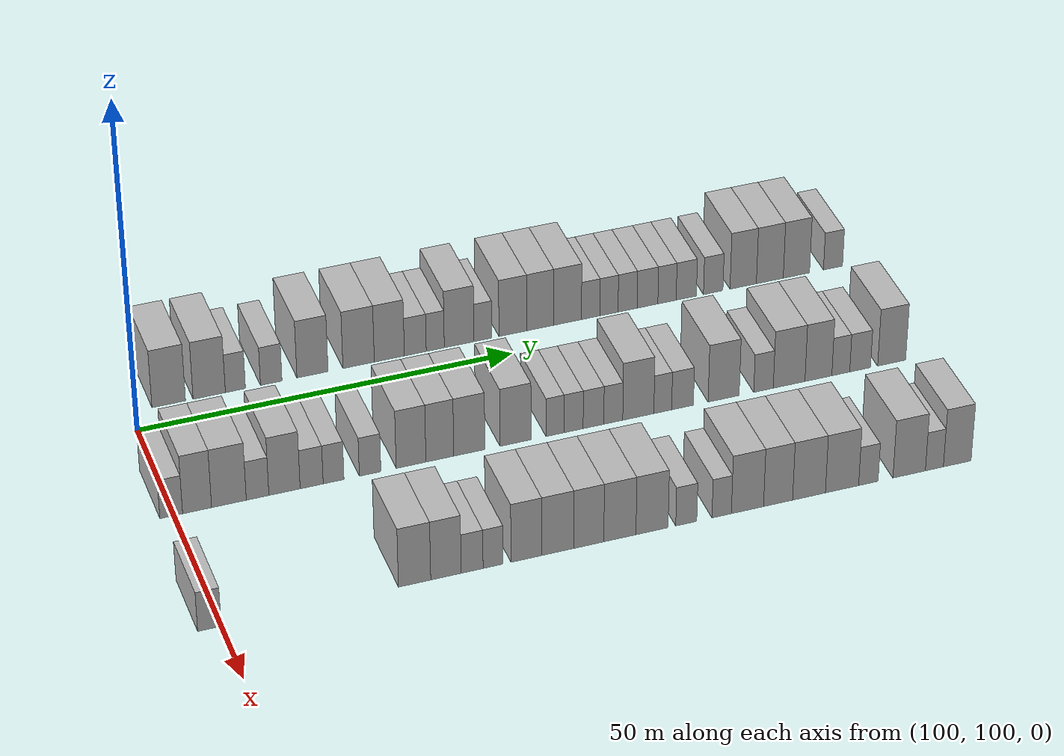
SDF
<sdf version="1.6">
 <world name="default">
  <model name="building_689">
   <static>1</static>
   <pose>91.0000 105.1484 0 0.000000 0.000000 0.000000</pose>
   <link name="link">
    <pose>0 0 4.50 0 0 0</pose>
    <collision name="collision"><geometry><box><size>10.0000 4.4140 9.0000</size></box></geometry></collision>
    <visual name="visual">
     <cast_shadows>0</cast_shadows>
     <geometry><box><size>10.0000 4.4140 9.0000</size></box></geometry>
     <material>
      <script>
       <uri>model://HANNAS_wall/materials/scripts</uri>
       <uri>model://HANNAS_wall/materials/textures</uri>
       <name>vrc/HANNAS_wall</name>
      </script>
     </material>
    </visual>
   </link>
  </model>
  <model name="building_690">
   <static>1</static>
   <pose>91.0000 110.4901 0 0.000000 0.000000 0.000000</pose>
   <link name="link">
    <pose>0 0 4.50 0 0 0</pose>
    <collision name="collision"><geometry><box><size>10.0000 4.2694 9.0000</size></box></geometry></collision>
    <visual name="visual">
     <cast_shadows>0</cast_shadows>
     <geometry><box><size>10.0000 4.2694 9.0000</size></box></geometry>
     <material>
      <script>
       <uri>model://HANNAS_wall/materials/scripts</uri>
       <uri>model://HANNAS_wall/materials/textures</uri>
       <name>vrc/HANNAS_wall</name>
      </script>
     </material>
    </visual>
   </link>
  </model>
  <model name="building_691">
   <static>1</static>
   <pose>91.0000 113.9552 0 0.000000 0.000000 0.000000</pose>
   <link name="link">
    <pose>0 0 3.00 0 0 0</pose>
    <collision name="collision"><geometry><box><size>10.0000 2.6608 6.0000</size></box></geometry></collision>
    <visual name="visual">
     <cast_shadows>0</cast_shadows>
     <geometry><box><size>10.0000 2.6608 6.0000</size></box></geometry>
     <material>
      <script>
       <uri>model://HANNAS_wall/materials/scripts</uri>
       <uri>model://HANNAS_wall/materials/textures</uri>
       <name>vrc/HANNAS_wall</name>
      </script>
     </material>
    </visual>
   </link>
  </model>
  <model name="building_692">
   <static>1</static>
   <pose>91.0000 118.7201 0 0.000000 0.000000 0.000000</pose>
   <link name="link">
    <pose>0 0 3.00 0 0 0</pose>
    <collision name="collision"><geometry><box><size>10.0000 2.8691 6.0000</size></box></geometry></collision>
    <visual name="visual">
     <cast_shadows>0</cast_shadows>
     <geometry><box><size>10.0000 2.8691 6.0000</size></box></geometry>
     <material>
      <script>
       <uri>model://HANNAS_wall/materials/scripts</uri>
       <uri>model://HANNAS_wall/materials/textures</uri>
       <name>vrc/HANNAS_wall</name>
      </script>
     </material>
    </visual>
   </link>
  </model>
  <model name="building_693">
   <static>1</static>
   <pose>91.0000 124.2416 0 0.000000 0.000000 0.000000</pose>
   <link name="link">
    <pose>0 0 4.50 0 0 0</pose>
    <collision name="collision"><geometry><box><size>10.0000 4.1738 9.0000</size></box></geometry></collision>
    <visual name="visual">
     <cast_shadows>0</cast_shadows>
     <geometry><box><size>10.0000 4.1738 9.0000</size></box></geometry>
     <material>
      <script>
       <uri>model://HANNAS_wall/materials/scripts</uri>
       <uri>model://HANNAS_wall/materials/textures</uri>
       <name>vrc/HANNAS_wall</name>
      </script>
     </material>
    </visual>
   </link>
  </model>
  <model name="building_694">
   <static>1</static>
   <pose>91.0000 130.4463 0 0.000000 0.000000 0.000000</pose>
   <link name="link">
    <pose>0 0 4.50 0 0 0</pose>
    <collision name="collision"><geometry><box><size>10.0000 4.2356 9.0000</size></box></geometry></collision>
    <visual name="visual">
     <cast_shadows>0</cast_shadows>
     <geometry><box><size>10.0000 4.2356 9.0000</size></box></geometry>
     <material>
      <script>
       <uri>model://HANNAS_wall/materials/scripts</uri>
       <uri>model://HANNAS_wall/materials/textures</uri>
       <name>vrc/HANNAS_wall</name>
      </script>
     </material>
    </visual>
   </link>
  </model>
  <model name="building_695">
   <static>1</static>
   <pose>91.0000 134.6014 0 0.000000 0.000000 0.000000</pose>
   <link name="link">
    <pose>0 0 4.50 0 0 0</pose>
    <collision name="collision"><geometry><box><size>10.0000 4.0746 9.0000</size></box></geometry></collision>
    <visual name="visual">
     <cast_shadows>0</cast_shadows>
     <geometry><box><size>10.0000 4.0746 9.0000</size></box></geometry>
     <material>
      <script>
       <uri>model://HANNAS_wall/materials/scripts</uri>
       <uri>model://HANNAS_wall/materials/textures</uri>
       <name>vrc/HANNAS_wall</name>
      </script>
     </material>
    </visual>
   </link>
  </model>
  <model name="building_696">
   <static>1</static>
   <pose>91.0000 138.1238 0 0.000000 0.000000 0.000000</pose>
   <link name="link">
    <pose>0 0 3.00 0 0 0</pose>
    <collision name="collision"><geometry><box><size>10.0000 2.9702 6.0000</size></box></geometry></collision>
    <visual name="visual">
     <cast_shadows>0</cast_shadows>
     <geometry><box><size>10.0000 2.9702 6.0000</size></box></geometry>
     <material>
      <script>
       <uri>model://HANNAS_wall/materials/scripts</uri>
       <uri>model://HANNAS_wall/materials/textures</uri>
       <name>vrc/HANNAS_wall</name>
      </script>
     </material>
    </visual>
   </link>
  </model>
  <model name="building_697">
   <static>1</static>
   <pose>91.0000 140.8395 0 0.000000 0.000000 0.000000</pose>
   <link name="link">
    <pose>0 0 3.00 0 0 0</pose>
    <collision name="collision"><geometry><box><size>10.0000 2.4612 6.0000</size></box></geometry></collision>
    <visual name="visual">
     <cast_shadows>0</cast_shadows>
     <geometry><box><size>10.0000 2.4612 6.0000</size></box></geometry>
     <material>
      <script>
       <uri>model://HANNAS_wall/materials/scripts</uri>
       <uri>model://HANNAS_wall/materials/textures</uri>
       <name>vrc/HANNAS_wall</name>
      </script>
     </material>
    </visual>
   </link>
  </model>
  <model name="building_698">
   <static>1</static>
   <pose>91.0000 144.1012 0 0.000000 0.000000 0.000000</pose>
   <link name="link">
    <pose>0 0 4.50 0 0 0</pose>
    <collision name="collision"><geometry><box><size>10.0000 4.0623 9.0000</size></box></geometry></collision>
    <visual name="visual">
     <cast_shadows>0</cast_shadows>
     <geometry><box><size>10.0000 4.0623 9.0000</size></box></geometry>
     <material>
      <script>
       <uri>model://HANNAS_wall/materials/scripts</uri>
       <uri>model://HANNAS_wall/materials/textures</uri>
       <name>vrc/HANNAS_wall</name>
      </script>
     </material>
    </visual>
   </link>
  </model>
  <model name="building_699">
   <static>1</static>
   <pose>91.0000 147.3451 0 0.000000 0.000000 0.000000</pose>
   <link name="link">
    <pose>0 0 3.00 0 0 0</pose>
    <collision name="collision"><geometry><box><size>10.0000 2.4255 6.0000</size></box></geometry></collision>
    <visual name="visual">
     <cast_shadows>0</cast_shadows>
     <geometry><box><size>10.0000 2.4255 6.0000</size></box></geometry>
     <material>
      <script>
       <uri>model://HANNAS_wall/materials/scripts</uri>
       <uri>model://HANNAS_wall/materials/textures</uri>
       <name>vrc/HANNAS_wall</name>
      </script>
     </material>
    </visual>
   </link>
  </model>
  <model name="building_700">
   <static>1</static>
   <pose>91.0000 151.4682 0 0.000000 0.000000 0.000000</pose>
   <link name="link">
    <pose>0 0 4.50 0 0 0</pose>
    <collision name="collision"><geometry><box><size>10.0000 3.8207 9.0000</size></box></geometry></collision>
    <visual name="visual">
     <cast_shadows>0</cast_shadows>
     <geometry><box><size>10.0000 3.8207 9.0000</size></box></geometry>
     <material>
      <script>
       <uri>model://HANNAS_wall/materials/scripts</uri>
       <uri>model://HANNAS_wall/materials/textures</uri>
       <name>vrc/HANNAS_wall</name>
      </script>
     </material>
    </visual>
   </link>
  </model>
  <model name="building_701">
   <static>1</static>
   <pose>91.0000 155.2470 0 0.000000 0.000000 0.000000</pose>
   <link name="link">
    <pose>0 0 4.50 0 0 0</pose>
    <collision name="collision"><geometry><box><size>10.0000 3.7368 9.0000</size></box></geometry></collision>
    <visual name="visual">
     <cast_shadows>0</cast_shadows>
     <geometry><box><size>10.0000 3.7368 9.0000</size></box></geometry>
     <material>
      <script>
       <uri>model://HANNAS_wall/materials/scripts</uri>
       <uri>model://HANNAS_wall/materials/textures</uri>
       <name>vrc/HANNAS_wall</name>
      </script>
     </material>
    </visual>
   </link>
  </model>
  <model name="building_702">
   <static>1</static>
   <pose>91.0000 159.0429 0 0.000000 0.000000 0.000000</pose>
   <link name="link">
    <pose>0 0 4.50 0 0 0</pose>
    <collision name="collision"><geometry><box><size>10.0000 3.8551 9.0000</size></box></geometry></collision>
    <visual name="visual">
     <cast_shadows>0</cast_shadows>
     <geometry><box><size>10.0000 3.8551 9.0000</size></box></geometry>
     <material>
      <script>
       <uri>model://HANNAS_wall/materials/scripts</uri>
       <uri>model://HANNAS_wall/materials/textures</uri>
       <name>vrc/HANNAS_wall</name>
      </script>
     </material>
    </visual>
   </link>
  </model>
  <model name="building_703">
   <static>1</static>
   <pose>91.0000 162.2574 0 0.000000 0.000000 0.000000</pose>
   <link name="link">
    <pose>0 0 3.00 0 0 0</pose>
    <collision name="collision"><geometry><box><size>10.0000 2.5739 6.0000</size></box></geometry></collision>
    <visual name="visual">
     <cast_shadows>0</cast_shadows>
     <geometry><box><size>10.0000 2.5739 6.0000</size></box></geometry>
     <material>
      <script>
       <uri>model://HANNAS_wall/materials/scripts</uri>
       <uri>model://HANNAS_wall/materials/textures</uri>
       <name>vrc/HANNAS_wall</name>
      </script>
     </material>
    </visual>
   </link>
  </model>
  <model name="building_704">
   <static>1</static>
   <pose>91.0000 164.8081 0 0.000000 0.000000 0.000000</pose>
   <link name="link">
    <pose>0 0 3.00 0 0 0</pose>
    <collision name="collision"><geometry><box><size>10.0000 2.5275 6.0000</size></box></geometry></collision>
    <visual name="visual">
     <cast_shadows>0</cast_shadows>
     <geometry><box><size>10.0000 2.5275 6.0000</size></box></geometry>
     <material>
      <script>
       <uri>model://HANNAS_wall/materials/scripts</uri>
       <uri>model://HANNAS_wall/materials/textures</uri>
       <name>vrc/HANNAS_wall</name>
      </script>
     </material>
    </visual>
   </link>
  </model>
  <model name="building_705">
   <static>1</static>
   <pose>91.0000 167.4057 0 0.000000 0.000000 0.000000</pose>
   <link name="link">
    <pose>0 0 3.00 0 0 0</pose>
    <collision name="collision"><geometry><box><size>10.0000 2.6676 6.0000</size></box></geometry></collision>
    <visual name="visual">
     <cast_shadows>0</cast_shadows>
     <geometry><box><size>10.0000 2.6676 6.0000</size></box></geometry>
     <material>
      <script>
       <uri>model://HANNAS_wall/materials/scripts</uri>
       <uri>model://HANNAS_wall/materials/textures</uri>
       <name>vrc/HANNAS_wall</name>
      </script>
     </material>
    </visual>
   </link>
  </model>
  <model name="building_706">
   <static>1</static>
   <pose>91.0000 170.1947 0 0.000000 0.000000 0.000000</pose>
   <link name="link">
    <pose>0 0 3.00 0 0 0</pose>
    <collision name="collision"><geometry><box><size>10.0000 2.9104 6.0000</size></box></geometry></collision>
    <visual name="visual">
     <cast_shadows>0</cast_shadows>
     <geometry><box><size>10.0000 2.9104 6.0000</size></box></geometry>
     <material>
      <script>
       <uri>model://HANNAS_wall/materials/scripts</uri>
       <uri>model://HANNAS_wall/materials/textures</uri>
       <name>vrc/HANNAS_wall</name>
      </script>
     </material>
    </visual>
   </link>
  </model>
  <model name="building_707">
   <static>1</static>
   <pose>91.0000 172.9384 0 0.000000 0.000000 0.000000</pose>
   <link name="link">
    <pose>0 0 3.00 0 0 0</pose>
    <collision name="collision"><geometry><box><size>10.0000 2.5768 6.0000</size></box></geometry></collision>
    <visual name="visual">
     <cast_shadows>0</cast_shadows>
     <geometry><box><size>10.0000 2.5768 6.0000</size></box></geometry>
     <material>
      <script>
       <uri>model://HANNAS_wall/materials/scripts</uri>
       <uri>model://HANNAS_wall/materials/textures</uri>
       <name>vrc/HANNAS_wall</name>
      </script>
     </material>
    </visual>
   </link>
  </model>
  <model name="building_708">
   <static>1</static>
   <pose>91.0000 175.6549 0 0.000000 0.000000 0.000000</pose>
   <link name="link">
    <pose>0 0 3.00 0 0 0</pose>
    <collision name="collision"><geometry><box><size>10.0000 2.8563 6.0000</size></box></geometry></collision>
    <visual name="visual">
     <cast_shadows>0</cast_shadows>
     <geometry><box><size>10.0000 2.8563 6.0000</size></box></geometry>
     <material>
      <script>
       <uri>model://HANNAS_wall/materials/scripts</uri>
       <uri>model://HANNAS_wall/materials/textures</uri>
       <name>vrc/HANNAS_wall</name>
      </script>
     </material>
    </visual>
   </link>
  </model>
  <model name="building_709">
   <static>1</static>
   <pose>91.0000 179.4628 0 0.000000 0.000000 0.000000</pose>
   <link name="link">
    <pose>0 0 3.00 0 0 0</pose>
    <collision name="collision"><geometry><box><size>10.0000 2.7596 6.0000</size></box></geometry></collision>
    <visual name="visual">
     <cast_shadows>0</cast_shadows>
     <geometry><box><size>10.0000 2.7596 6.0000</size></box></geometry>
     <material>
      <script>
       <uri>model://HANNAS_wall/materials/scripts</uri>
       <uri>model://HANNAS_wall/materials/textures</uri>
       <name>vrc/HANNAS_wall</name>
      </script>
     </material>
    </visual>
   </link>
  </model>
  <model name="building_710">
   <static>1</static>
   <pose>91.0000 183.7193 0 0.000000 0.000000 0.000000</pose>
   <link name="link">
    <pose>0 0 4.50 0 0 0</pose>
    <collision name="collision"><geometry><box><size>10.0000 3.7533 9.0000</size></box></geometry></collision>
    <visual name="visual">
     <cast_shadows>0</cast_shadows>
     <geometry><box><size>10.0000 3.7533 9.0000</size></box></geometry>
     <material>
      <script>
       <uri>model://HANNAS_wall/materials/scripts</uri>
       <uri>model://HANNAS_wall/materials/textures</uri>
       <name>vrc/HANNAS_wall</name>
      </script>
     </material>
    </visual>
   </link>
  </model>
  <model name="building_711">
   <static>1</static>
   <pose>91.0000 187.5154 0 0.000000 0.000000 0.000000</pose>
   <link name="link">
    <pose>0 0 4.50 0 0 0</pose>
    <collision name="collision"><geometry><box><size>10.0000 3.8388 9.0000</size></box></geometry></collision>
    <visual name="visual">
     <cast_shadows>0</cast_shadows>
     <geometry><box><size>10.0000 3.8388 9.0000</size></box></geometry>
     <material>
      <script>
       <uri>model://HANNAS_wall/materials/scripts</uri>
       <uri>model://HANNAS_wall/materials/textures</uri>
       <name>vrc/HANNAS_wall</name>
      </script>
     </material>
    </visual>
   </link>
  </model>
  <model name="building_712">
   <static>1</static>
   <pose>91.0000 191.3182 0 0.000000 0.000000 0.000000</pose>
   <link name="link">
    <pose>0 0 4.50 0 0 0</pose>
    <collision name="collision"><geometry><box><size>10.0000 3.7668 9.0000</size></box></geometry></collision>
    <visual name="visual">
     <cast_shadows>0</cast_shadows>
     <geometry><box><size>10.0000 3.7668 9.0000</size></box></geometry>
     <material>
      <script>
       <uri>model://HANNAS_wall/materials/scripts</uri>
       <uri>model://HANNAS_wall/materials/textures</uri>
       <name>vrc/HANNAS_wall</name>
      </script>
     </material>
    </visual>
   </link>
  </model>
  <model name="building_713">
   <static>1</static>
   <pose>91.0000 196.5730 0 0.000000 0.000000 0.000000</pose>
   <link name="link">
    <pose>0 0 3.00 0 0 0</pose>
    <collision name="collision"><geometry><box><size>10.0000 2.7430 6.0000</size></box></geometry></collision>
    <visual name="visual">
     <cast_shadows>0</cast_shadows>
     <geometry><box><size>10.0000 2.7430 6.0000</size></box></geometry>
     <material>
      <script>
       <uri>model://HANNAS_wall/materials/scripts</uri>
       <uri>model://HANNAS_wall/materials/textures</uri>
       <name>vrc/HANNAS_wall</name>
      </script>
     </material>
    </visual>
   </link>
  </model>
  <model name="building_870">
   <static>1</static>
   <pose>113.0000 99.6848 0 0.000000 0.000000 0.000000</pose>
   <link name="link">
    <pose>0 0 3.00 0 0 0</pose>
    <collision name="collision"><geometry><box><size>10.0000 2.8811 6.0000</size></box></geometry></collision>
    <visual name="visual">
     <cast_shadows>0</cast_shadows>
     <geometry><box><size>10.0000 2.8811 6.0000</size></box></geometry>
     <material>
      <script>
       <uri>model://HANNAS_wall/materials/scripts</uri>
       <uri>model://HANNAS_wall/materials/textures</uri>
       <name>vrc/HANNAS_wall</name>
      </script>
     </material>
    </visual>
   </link>
  </model>
  <model name="building_871">
   <static>1</static>
   <pose>113.0000 102.9719 0 0.000000 0.000000 0.000000</pose>
   <link name="link">
    <pose>0 0 4.50 0 0 0</pose>
    <collision name="collision"><geometry><box><size>10.0000 3.6931 9.0000</size></box></geometry></collision>
    <visual name="visual">
     <cast_shadows>0</cast_shadows>
     <geometry><box><size>10.0000 3.6931 9.0000</size></box></geometry>
     <material>
      <script>
       <uri>model://HANNAS_wall/materials/scripts</uri>
       <uri>model://HANNAS_wall/materials/textures</uri>
       <name>vrc/HANNAS_wall</name>
      </script>
     </material>
    </visual>
   </link>
  </model>
  <model name="building_872">
   <static>1</static>
   <pose>113.0000 107.0374 0 0.000000 0.000000 0.000000</pose>
   <link name="link">
    <pose>0 0 4.50 0 0 0</pose>
    <collision name="collision"><geometry><box><size>10.0000 4.4379 9.0000</size></box></geometry></collision>
    <visual name="visual">
     <cast_shadows>0</cast_shadows>
     <geometry><box><size>10.0000 4.4379 9.0000</size></box></geometry>
     <material>
      <script>
       <uri>model://HANNAS_wall/materials/scripts</uri>
       <uri>model://HANNAS_wall/materials/textures</uri>
       <name>vrc/HANNAS_wall</name>
      </script>
     </material>
    </visual>
   </link>
  </model>
  <model name="building_873">
   <static>1</static>
   <pose>113.0000 110.7042 0 0.000000 0.000000 0.000000</pose>
   <link name="link">
    <pose>0 0 3.00 0 0 0</pose>
    <collision name="collision"><geometry><box><size>10.0000 2.8957 6.0000</size></box></geometry></collision>
    <visual name="visual">
     <cast_shadows>0</cast_shadows>
     <geometry><box><size>10.0000 2.8957 6.0000</size></box></geometry>
     <material>
      <script>
       <uri>model://HANNAS_wall/materials/scripts</uri>
       <uri>model://HANNAS_wall/materials/textures</uri>
       <name>vrc/HANNAS_wall</name>
      </script>
     </material>
    </visual>
   </link>
  </model>
  <model name="building_874">
   <static>1</static>
   <pose>113.0000 114.1680 0 0.000000 0.000000 0.000000</pose>
   <link name="link">
    <pose>0 0 4.50 0 0 0</pose>
    <collision name="collision"><geometry><box><size>10.0000 4.0319 9.0000</size></box></geometry></collision>
    <visual name="visual">
     <cast_shadows>0</cast_shadows>
     <geometry><box><size>10.0000 4.0319 9.0000</size></box></geometry>
     <material>
      <script>
       <uri>model://HANNAS_wall/materials/scripts</uri>
       <uri>model://HANNAS_wall/materials/textures</uri>
       <name>vrc/HANNAS_wall</name>
      </script>
     </material>
    </visual>
   </link>
  </model>
  <model name="building_875">
   <static>1</static>
   <pose>113.0000 117.6734 0 0.000000 0.000000 0.000000</pose>
   <link name="link">
    <pose>0 0 3.00 0 0 0</pose>
    <collision name="collision"><geometry><box><size>10.0000 2.9788 6.0000</size></box></geometry></collision>
    <visual name="visual">
     <cast_shadows>0</cast_shadows>
     <geometry><box><size>10.0000 2.9788 6.0000</size></box></geometry>
     <material>
      <script>
       <uri>model://HANNAS_wall/materials/scripts</uri>
       <uri>model://HANNAS_wall/materials/textures</uri>
       <name>vrc/HANNAS_wall</name>
      </script>
     </material>
    </visual>
   </link>
  </model>
  <model name="building_876">
   <static>1</static>
   <pose>113.0000 120.5105 0 0.000000 0.000000 0.000000</pose>
   <link name="link">
    <pose>0 0 3.00 0 0 0</pose>
    <collision name="collision"><geometry><box><size>10.0000 2.6953 6.0000</size></box></geometry></collision>
    <visual name="visual">
     <cast_shadows>0</cast_shadows>
     <geometry><box><size>10.0000 2.6953 6.0000</size></box></geometry>
     <material>
      <script>
       <uri>model://HANNAS_wall/materials/scripts</uri>
       <uri>model://HANNAS_wall/materials/textures</uri>
       <name>vrc/HANNAS_wall</name>
      </script>
     </material>
    </visual>
   </link>
  </model>
  <model name="building_877">
   <static>1</static>
   <pose>113.0000 125.2604 0 0.000000 0.000000 0.000000</pose>
   <link name="link">
    <pose>0 0 3.00 0 0 0</pose>
    <collision name="collision"><geometry><box><size>10.0000 2.8044 6.0000</size></box></geometry></collision>
    <visual name="visual">
     <cast_shadows>0</cast_shadows>
     <geometry><box><size>10.0000 2.8044 6.0000</size></box></geometry>
     <material>
      <script>
       <uri>model://HANNAS_wall/materials/scripts</uri>
       <uri>model://HANNAS_wall/materials/textures</uri>
       <name>vrc/HANNAS_wall</name>
      </script>
     </material>
    </visual>
   </link>
  </model>
  <model name="building_878">
   <static>1</static>
   <pose>113.0000 130.6135 0 0.000000 0.000000 0.000000</pose>
   <link name="link">
    <pose>0 0 4.50 0 0 0</pose>
    <collision name="collision"><geometry><box><size>10.0000 3.9019 9.0000</size></box></geometry></collision>
    <visual name="visual">
     <cast_shadows>0</cast_shadows>
     <geometry><box><size>10.0000 3.9019 9.0000</size></box></geometry>
     <material>
      <script>
       <uri>model://HANNAS_wall/materials/scripts</uri>
       <uri>model://HANNAS_wall/materials/textures</uri>
       <name>vrc/HANNAS_wall</name>
      </script>
     </material>
    </visual>
   </link>
  </model>
  <model name="building_879">
   <static>1</static>
   <pose>113.0000 134.3978 0 0.000000 0.000000 0.000000</pose>
   <link name="link">
    <pose>0 0 4.50 0 0 0</pose>
    <collision name="collision"><geometry><box><size>10.0000 3.6666 9.0000</size></box></geometry></collision>
    <visual name="visual">
     <cast_shadows>0</cast_shadows>
     <geometry><box><size>10.0000 3.6666 9.0000</size></box></geometry>
     <material>
      <script>
       <uri>model://HANNAS_wall/materials/scripts</uri>
       <uri>model://HANNAS_wall/materials/textures</uri>
       <name>vrc/HANNAS_wall</name>
      </script>
     </material>
    </visual>
   </link>
  </model>
  <model name="building_880">
   <static>1</static>
   <pose>113.0000 138.2841 0 0.000000 0.000000 0.000000</pose>
   <link name="link">
    <pose>0 0 4.50 0 0 0</pose>
    <collision name="collision"><geometry><box><size>10.0000 4.1061 9.0000</size></box></geometry></collision>
    <visual name="visual">
     <cast_shadows>0</cast_shadows>
     <geometry><box><size>10.0000 4.1061 9.0000</size></box></geometry>
     <material>
      <script>
       <uri>model://HANNAS_wall/materials/scripts</uri>
       <uri>model://HANNAS_wall/materials/textures</uri>
       <name>vrc/HANNAS_wall</name>
      </script>
     </material>
    </visual>
   </link>
  </model>
  <model name="building_881">
   <static>1</static>
   <pose>113.0000 144.3983 0 0.000000 0.000000 0.000000</pose>
   <link name="link">
    <pose>0 0 4.50 0 0 0</pose>
    <collision name="collision"><geometry><box><size>10.0000 4.1223 9.0000</size></box></geometry></collision>
    <visual name="visual">
     <cast_shadows>0</cast_shadows>
     <geometry><box><size>10.0000 4.1223 9.0000</size></box></geometry>
     <material>
      <script>
       <uri>model://HANNAS_wall/materials/scripts</uri>
       <uri>model://HANNAS_wall/materials/textures</uri>
       <name>vrc/HANNAS_wall</name>
      </script>
     </material>
    </visual>
   </link>
  </model>
  <model name="building_882">
   <static>1</static>
   <pose>113.0000 149.6615 0 0.000000 0.000000 0.000000</pose>
   <link name="link">
    <pose>0 0 3.00 0 0 0</pose>
    <collision name="collision"><geometry><box><size>10.0000 2.4042 6.0000</size></box></geometry></collision>
    <visual name="visual">
     <cast_shadows>0</cast_shadows>
     <geometry><box><size>10.0000 2.4042 6.0000</size></box></geometry>
     <material>
      <script>
       <uri>model://HANNAS_wall/materials/scripts</uri>
       <uri>model://HANNAS_wall/materials/textures</uri>
       <name>vrc/HANNAS_wall</name>
      </script>
     </material>
    </visual>
   </link>
  </model>
  <model name="building_883">
   <static>1</static>
   <pose>113.0000 152.1461 0 0.000000 0.000000 0.000000</pose>
   <link name="link">
    <pose>0 0 3.00 0 0 0</pose>
    <collision name="collision"><geometry><box><size>10.0000 2.5650 6.0000</size></box></geometry></collision>
    <visual name="visual">
     <cast_shadows>0</cast_shadows>
     <geometry><box><size>10.0000 2.5650 6.0000</size></box></geometry>
     <material>
      <script>
       <uri>model://HANNAS_wall/materials/scripts</uri>
       <uri>model://HANNAS_wall/materials/textures</uri>
       <name>vrc/HANNAS_wall</name>
      </script>
     </material>
    </visual>
   </link>
  </model>
  <model name="building_884">
   <static>1</static>
   <pose>113.0000 154.8182 0 0.000000 0.000000 0.000000</pose>
   <link name="link">
    <pose>0 0 3.00 0 0 0</pose>
    <collision name="collision"><geometry><box><size>10.0000 2.7792 6.0000</size></box></geometry></collision>
    <visual name="visual">
     <cast_shadows>0</cast_shadows>
     <geometry><box><size>10.0000 2.7792 6.0000</size></box></geometry>
     <material>
      <script>
       <uri>model://HANNAS_wall/materials/scripts</uri>
       <uri>model://HANNAS_wall/materials/textures</uri>
       <name>vrc/HANNAS_wall</name>
      </script>
     </material>
    </visual>
   </link>
  </model>
  <model name="building_885">
   <static>1</static>
   <pose>113.0000 157.4840 0 0.000000 0.000000 0.000000</pose>
   <link name="link">
    <pose>0 0 3.00 0 0 0</pose>
    <collision name="collision"><geometry><box><size>10.0000 2.5523 6.0000</size></box></geometry></collision>
    <visual name="visual">
     <cast_shadows>0</cast_shadows>
     <geometry><box><size>10.0000 2.5523 6.0000</size></box></geometry>
     <material>
      <script>
       <uri>model://HANNAS_wall/materials/scripts</uri>
       <uri>model://HANNAS_wall/materials/textures</uri>
       <name>vrc/HANNAS_wall</name>
      </script>
     </material>
    </visual>
   </link>
  </model>
  <model name="building_886">
   <static>1</static>
   <pose>113.0000 160.8616 0 0.000000 0.000000 0.000000</pose>
   <link name="link">
    <pose>0 0 4.50 0 0 0</pose>
    <collision name="collision"><geometry><box><size>10.0000 4.2029 9.0000</size></box></geometry></collision>
    <visual name="visual">
     <cast_shadows>0</cast_shadows>
     <geometry><box><size>10.0000 4.2029 9.0000</size></box></geometry>
     <material>
      <script>
       <uri>model://HANNAS_wall/materials/scripts</uri>
       <uri>model://HANNAS_wall/materials/textures</uri>
       <name>vrc/HANNAS_wall</name>
      </script>
     </material>
    </visual>
   </link>
  </model>
  <model name="building_887">
   <static>1</static>
   <pose>113.0000 164.1713 0 0.000000 0.000000 0.000000</pose>
   <link name="link">
    <pose>0 0 3.00 0 0 0</pose>
    <collision name="collision"><geometry><box><size>10.0000 2.4165 6.0000</size></box></geometry></collision>
    <visual name="visual">
     <cast_shadows>0</cast_shadows>
     <geometry><box><size>10.0000 2.4165 6.0000</size></box></geometry>
     <material>
      <script>
       <uri>model://HANNAS_wall/materials/scripts</uri>
       <uri>model://HANNAS_wall/materials/textures</uri>
       <name>vrc/HANNAS_wall</name>
      </script>
     </material>
    </visual>
   </link>
  </model>
  <model name="building_888">
   <static>1</static>
   <pose>113.0000 166.8611 0 0.000000 0.000000 0.000000</pose>
   <link name="link">
    <pose>0 0 3.00 0 0 0</pose>
    <collision name="collision"><geometry><box><size>10.0000 2.9630 6.0000</size></box></geometry></collision>
    <visual name="visual">
     <cast_shadows>0</cast_shadows>
     <geometry><box><size>10.0000 2.9630 6.0000</size></box></geometry>
     <material>
      <script>
       <uri>model://HANNAS_wall/materials/scripts</uri>
       <uri>model://HANNAS_wall/materials/textures</uri>
       <name>vrc/HANNAS_wall</name>
      </script>
     </material>
    </visual>
   </link>
  </model>
  <model name="building_889">
   <static>1</static>
   <pose>113.0000 172.4681 0 0.000000 0.000000 0.000000</pose>
   <link name="link">
    <pose>0 0 4.50 0 0 0</pose>
    <collision name="collision"><geometry><box><size>10.0000 4.2511 9.0000</size></box></geometry></collision>
    <visual name="visual">
     <cast_shadows>0</cast_shadows>
     <geometry><box><size>10.0000 4.2511 9.0000</size></box></geometry>
     <material>
      <script>
       <uri>model://HANNAS_wall/materials/scripts</uri>
       <uri>model://HANNAS_wall/materials/textures</uri>
       <name>vrc/HANNAS_wall</name>
      </script>
     </material>
    </visual>
   </link>
  </model>
  <model name="building_890">
   <static>1</static>
   <pose>113.0000 177.9372 0 0.000000 0.000000 0.000000</pose>
   <link name="link">
    <pose>0 0 3.00 0 0 0</pose>
    <collision name="collision"><geometry><box><size>10.0000 2.6871 6.0000</size></box></geometry></collision>
    <visual name="visual">
     <cast_shadows>0</cast_shadows>
     <geometry><box><size>10.0000 2.6871 6.0000</size></box></geometry>
     <material>
      <script>
       <uri>model://HANNAS_wall/materials/scripts</uri>
       <uri>model://HANNAS_wall/materials/textures</uri>
       <name>vrc/HANNAS_wall</name>
      </script>
     </material>
    </visual>
   </link>
  </model>
  <model name="building_891">
   <static>1</static>
   <pose>113.0000 181.4681 0 0.000000 0.000000 0.000000</pose>
   <link name="link">
    <pose>0 0 4.50 0 0 0</pose>
    <collision name="collision"><geometry><box><size>10.0000 4.3747 9.0000</size></box></geometry></collision>
    <visual name="visual">
     <cast_shadows>0</cast_shadows>
     <geometry><box><size>10.0000 4.3747 9.0000</size></box></geometry>
     <material>
      <script>
       <uri>model://HANNAS_wall/materials/scripts</uri>
       <uri>model://HANNAS_wall/materials/textures</uri>
       <name>vrc/HANNAS_wall</name>
      </script>
     </material>
    </visual>
   </link>
  </model>
  <model name="building_892">
   <static>1</static>
   <pose>113.0000 185.5213 0 0.000000 0.000000 0.000000</pose>
   <link name="link">
    <pose>0 0 4.50 0 0 0</pose>
    <collision name="collision"><geometry><box><size>10.0000 3.7317 9.0000</size></box></geometry></collision>
    <visual name="visual">
     <cast_shadows>0</cast_shadows>
     <geometry><box><size>10.0000 3.7317 9.0000</size></box></geometry>
     <material>
      <script>
       <uri>model://HANNAS_wall/materials/scripts</uri>
       <uri>model://HANNAS_wall/materials/textures</uri>
       <name>vrc/HANNAS_wall</name>
      </script>
     </material>
    </visual>
   </link>
  </model>
  <model name="building_893">
   <static>1</static>
   <pose>113.0000 188.6314 0 0.000000 0.000000 0.000000</pose>
   <link name="link">
    <pose>0 0 3.00 0 0 0</pose>
    <collision name="collision"><geometry><box><size>10.0000 2.4883 6.0000</size></box></geometry></collision>
    <visual name="visual">
     <cast_shadows>0</cast_shadows>
     <geometry><box><size>10.0000 2.4883 6.0000</size></box></geometry>
     <material>
      <script>
       <uri>model://HANNAS_wall/materials/scripts</uri>
       <uri>model://HANNAS_wall/materials/textures</uri>
       <name>vrc/HANNAS_wall</name>
      </script>
     </material>
    </visual>
   </link>
  </model>
  <model name="building_894">
   <static>1</static>
   <pose>113.0000 191.3251 0 0.000000 0.000000 0.000000</pose>
   <link name="link">
    <pose>0 0 3.00 0 0 0</pose>
    <collision name="collision"><geometry><box><size>10.0000 2.8992 6.0000</size></box></geometry></collision>
    <visual name="visual">
     <cast_shadows>0</cast_shadows>
     <geometry><box><size>10.0000 2.8992 6.0000</size></box></geometry>
     <material>
      <script>
       <uri>model://HANNAS_wall/materials/scripts</uri>
       <uri>model://HANNAS_wall/materials/textures</uri>
       <name>vrc/HANNAS_wall</name>
      </script>
     </material>
    </visual>
   </link>
  </model>
  <model name="building_895">
   <static>1</static>
   <pose>113.0000 195.7334 0 0.000000 0.000000 0.000000</pose>
   <link name="link">
    <pose>0 0 4.50 0 0 0</pose>
    <collision name="collision"><geometry><box><size>10.0000 3.9172 9.0000</size></box></geometry></collision>
    <visual name="visual">
     <cast_shadows>0</cast_shadows>
     <geometry><box><size>10.0000 3.9172 9.0000</size></box></geometry>
     <material>
      <script>
       <uri>model://HANNAS_wall/materials/scripts</uri>
       <uri>model://HANNAS_wall/materials/textures</uri>
       <name>vrc/HANNAS_wall</name>
      </script>
     </material>
    </visual>
   </link>
  </model>
  <model name="building_1066">
   <static>1</static>
   <pose>135.0000 98.5664 0 0.000000 0.000000 0.000000</pose>
   <link name="link">
    <pose>0 0 3.00 0 0 0</pose>
    <collision name="collision"><geometry><box><size>10.0000 2.8975 6.0000</size></box></geometry></collision>
    <visual name="visual">
     <cast_shadows>0</cast_shadows>
     <geometry><box><size>10.0000 2.8975 6.0000</size></box></geometry>
     <material>
      <script>
       <uri>model://HANNAS_wall/materials/scripts</uri>
       <uri>model://HANNAS_wall/materials/textures</uri>
       <name>vrc/HANNAS_wall</name>
      </script>
     </material>
    </visual>
   </link>
  </model>
  <model name="building_1067">
   <static>1</static>
   <pose>135.0000 124.1305 0 0.000000 0.000000 0.000000</pose>
   <link name="link">
    <pose>0 0 4.50 0 0 0</pose>
    <collision name="collision"><geometry><box><size>10.0000 4.0769 9.0000</size></box></geometry></collision>
    <visual name="visual">
     <cast_shadows>0</cast_shadows>
     <geometry><box><size>10.0000 4.0769 9.0000</size></box></geometry>
     <material>
      <script>
       <uri>model://HANNAS_wall/materials/scripts</uri>
       <uri>model://HANNAS_wall/materials/textures</uri>
       <name>vrc/HANNAS_wall</name>
      </script>
     </material>
    </visual>
   </link>
  </model>
  <model name="building_1068">
   <static>1</static>
   <pose>135.0000 128.0997 0 0.000000 0.000000 0.000000</pose>
   <link name="link">
    <pose>0 0 4.50 0 0 0</pose>
    <collision name="collision"><geometry><box><size>10.0000 3.8614 9.0000</size></box></geometry></collision>
    <visual name="visual">
     <cast_shadows>0</cast_shadows>
     <geometry><box><size>10.0000 3.8614 9.0000</size></box></geometry>
     <material>
      <script>
       <uri>model://HANNAS_wall/materials/scripts</uri>
       <uri>model://HANNAS_wall/materials/textures</uri>
       <name>vrc/HANNAS_wall</name>
      </script>
     </material>
    </visual>
   </link>
  </model>
  <model name="building_1069">
   <static>1</static>
   <pose>135.0000 131.4237 0 0.000000 0.000000 0.000000</pose>
   <link name="link">
    <pose>0 0 3.00 0 0 0</pose>
    <collision name="collision"><geometry><box><size>10.0000 2.7866 6.0000</size></box></geometry></collision>
    <visual name="visual">
     <cast_shadows>0</cast_shadows>
     <geometry><box><size>10.0000 2.7866 6.0000</size></box></geometry>
     <material>
      <script>
       <uri>model://HANNAS_wall/materials/scripts</uri>
       <uri>model://HANNAS_wall/materials/textures</uri>
       <name>vrc/HANNAS_wall</name>
      </script>
     </material>
    </visual>
   </link>
  </model>
  <model name="building_1070">
   <static>1</static>
   <pose>135.0000 134.0970 0 0.000000 0.000000 0.000000</pose>
   <link name="link">
    <pose>0 0 3.00 0 0 0</pose>
    <collision name="collision"><geometry><box><size>10.0000 2.5599 6.0000</size></box></geometry></collision>
    <visual name="visual">
     <cast_shadows>0</cast_shadows>
     <geometry><box><size>10.0000 2.5599 6.0000</size></box></geometry>
     <material>
      <script>
       <uri>model://HANNAS_wall/materials/scripts</uri>
       <uri>model://HANNAS_wall/materials/textures</uri>
       <name>vrc/HANNAS_wall</name>
      </script>
     </material>
    </visual>
   </link>
  </model>
  <model name="building_1071">
   <static>1</static>
   <pose>135.0000 138.3542 0 0.000000 0.000000 0.000000</pose>
   <link name="link">
    <pose>0 0 4.50 0 0 0</pose>
    <collision name="collision"><geometry><box><size>10.0000 3.9546 9.0000</size></box></geometry></collision>
    <visual name="visual">
     <cast_shadows>0</cast_shadows>
     <geometry><box><size>10.0000 3.9546 9.0000</size></box></geometry>
     <material>
      <script>
       <uri>model://HANNAS_wall/materials/scripts</uri>
       <uri>model://HANNAS_wall/materials/textures</uri>
       <name>vrc/HANNAS_wall</name>
      </script>
     </material>
    </visual>
   </link>
  </model>
  <model name="building_1072">
   <static>1</static>
   <pose>135.0000 142.3835 0 0.000000 0.000000 0.000000</pose>
   <link name="link">
    <pose>0 0 4.50 0 0 0</pose>
    <collision name="collision"><geometry><box><size>10.0000 4.1040 9.0000</size></box></geometry></collision>
    <visual name="visual">
     <cast_shadows>0</cast_shadows>
     <geometry><box><size>10.0000 4.1040 9.0000</size></box></geometry>
     <material>
      <script>
       <uri>model://HANNAS_wall/materials/scripts</uri>
       <uri>model://HANNAS_wall/materials/textures</uri>
       <name>vrc/HANNAS_wall</name>
      </script>
     </material>
    </visual>
   </link>
  </model>
  <model name="building_1073">
   <static>1</static>
   <pose>135.0000 146.3849 0 0.000000 0.000000 0.000000</pose>
   <link name="link">
    <pose>0 0 4.50 0 0 0</pose>
    <collision name="collision"><geometry><box><size>10.0000 3.8989 9.0000</size></box></geometry></collision>
    <visual name="visual">
     <cast_shadows>0</cast_shadows>
     <geometry><box><size>10.0000 3.8989 9.0000</size></box></geometry>
     <material>
      <script>
       <uri>model://HANNAS_wall/materials/scripts</uri>
       <uri>model://HANNAS_wall/materials/textures</uri>
       <name>vrc/HANNAS_wall</name>
      </script>
     </material>
    </visual>
   </link>
  </model>
  <model name="building_1074">
   <static>1</static>
   <pose>135.0000 150.4223 0 0.000000 0.000000 0.000000</pose>
   <link name="link">
    <pose>0 0 4.50 0 0 0</pose>
    <collision name="collision"><geometry><box><size>10.0000 4.1758 9.0000</size></box></geometry></collision>
    <visual name="visual">
     <cast_shadows>0</cast_shadows>
     <geometry><box><size>10.0000 4.1758 9.0000</size></box></geometry>
     <material>
      <script>
       <uri>model://HANNAS_wall/materials/scripts</uri>
       <uri>model://HANNAS_wall/materials/textures</uri>
       <name>vrc/HANNAS_wall</name>
      </script>
     </material>
    </visual>
   </link>
  </model>
  <model name="building_1075">
   <static>1</static>
   <pose>135.0000 154.6070 0 0.000000 0.000000 0.000000</pose>
   <link name="link">
    <pose>0 0 4.50 0 0 0</pose>
    <collision name="collision"><geometry><box><size>10.0000 4.1936 9.0000</size></box></geometry></collision>
    <visual name="visual">
     <cast_shadows>0</cast_shadows>
     <geometry><box><size>10.0000 4.1936 9.0000</size></box></geometry>
     <material>
      <script>
       <uri>model://HANNAS_wall/materials/scripts</uri>
       <uri>model://HANNAS_wall/materials/textures</uri>
       <name>vrc/HANNAS_wall</name>
      </script>
     </material>
    </visual>
   </link>
  </model>
  <model name="building_1076">
   <static>1</static>
   <pose>135.0000 159.0815 0 0.000000 0.000000 0.000000</pose>
   <link name="link">
    <pose>0 0 3.00 0 0 0</pose>
    <collision name="collision"><geometry><box><size>10.0000 2.7555 6.0000</size></box></geometry></collision>
    <visual name="visual">
     <cast_shadows>0</cast_shadows>
     <geometry><box><size>10.0000 2.7555 6.0000</size></box></geometry>
     <material>
      <script>
       <uri>model://HANNAS_wall/materials/scripts</uri>
       <uri>model://HANNAS_wall/materials/textures</uri>
       <name>vrc/HANNAS_wall</name>
      </script>
     </material>
    </visual>
   </link>
  </model>
  <model name="building_1077">
   <static>1</static>
   <pose>135.0000 163.7368 0 0.000000 0.000000 0.000000</pose>
   <link name="link">
    <pose>0 0 3.00 0 0 0</pose>
    <collision name="collision"><geometry><box><size>10.0000 2.5550 6.0000</size></box></geometry></collision>
    <visual name="visual">
     <cast_shadows>0</cast_shadows>
     <geometry><box><size>10.0000 2.5550 6.0000</size></box></geometry>
     <material>
      <script>
       <uri>model://HANNAS_wall/materials/scripts</uri>
       <uri>model://HANNAS_wall/materials/textures</uri>
       <name>vrc/HANNAS_wall</name>
      </script>
     </material>
    </visual>
   </link>
  </model>
  <model name="building_1078">
   <static>1</static>
   <pose>135.0000 167.1426 0 0.000000 0.000000 0.000000</pose>
   <link name="link">
    <pose>0 0 4.50 0 0 0</pose>
    <collision name="collision"><geometry><box><size>10.0000 4.2565 9.0000</size></box></geometry></collision>
    <visual name="visual">
     <cast_shadows>0</cast_shadows>
     <geometry><box><size>10.0000 4.2565 9.0000</size></box></geometry>
     <material>
      <script>
       <uri>model://HANNAS_wall/materials/scripts</uri>
       <uri>model://HANNAS_wall/materials/textures</uri>
       <name>vrc/HANNAS_wall</name>
      </script>
     </material>
    </visual>
   </link>
  </model>
  <model name="building_1079">
   <static>1</static>
   <pose>135.0000 171.1993 0 0.000000 0.000000 0.000000</pose>
   <link name="link">
    <pose>0 0 4.50 0 0 0</pose>
    <collision name="collision"><geometry><box><size>10.0000 3.8569 9.0000</size></box></geometry></collision>
    <visual name="visual">
     <cast_shadows>0</cast_shadows>
     <geometry><box><size>10.0000 3.8569 9.0000</size></box></geometry>
     <material>
      <script>
       <uri>model://HANNAS_wall/materials/scripts</uri>
       <uri>model://HANNAS_wall/materials/textures</uri>
       <name>vrc/HANNAS_wall</name>
      </script>
     </material>
    </visual>
   </link>
  </model>
  <model name="building_1080">
   <static>1</static>
   <pose>135.0000 175.3177 0 0.000000 0.000000 0.000000</pose>
   <link name="link">
    <pose>0 0 4.50 0 0 0</pose>
    <collision name="collision"><geometry><box><size>10.0000 4.3800 9.0000</size></box></geometry></collision>
    <visual name="visual">
     <cast_shadows>0</cast_shadows>
     <geometry><box><size>10.0000 4.3800 9.0000</size></box></geometry>
     <material>
      <script>
       <uri>model://HANNAS_wall/materials/scripts</uri>
       <uri>model://HANNAS_wall/materials/textures</uri>
       <name>vrc/HANNAS_wall</name>
      </script>
     </material>
    </visual>
   </link>
  </model>
  <model name="building_1081">
   <static>1</static>
   <pose>135.0000 179.7328 0 0.000000 0.000000 0.000000</pose>
   <link name="link">
    <pose>0 0 4.50 0 0 0</pose>
    <collision name="collision"><geometry><box><size>10.0000 4.4504 9.0000</size></box></geometry></collision>
    <visual name="visual">
     <cast_shadows>0</cast_shadows>
     <geometry><box><size>10.0000 4.4504 9.0000</size></box></geometry>
     <material>
      <script>
       <uri>model://HANNAS_wall/materials/scripts</uri>
       <uri>model://HANNAS_wall/materials/textures</uri>
       <name>vrc/HANNAS_wall</name>
      </script>
     </material>
    </visual>
   </link>
  </model>
  <model name="building_1082">
   <static>1</static>
   <pose>135.0000 183.2678 0 0.000000 0.000000 0.000000</pose>
   <link name="link">
    <pose>0 0 3.00 0 0 0</pose>
    <collision name="collision"><geometry><box><size>10.0000 2.6195 6.0000</size></box></geometry></collision>
    <visual name="visual">
     <cast_shadows>0</cast_shadows>
     <geometry><box><size>10.0000 2.6195 6.0000</size></box></geometry>
     <material>
      <script>
       <uri>model://HANNAS_wall/materials/scripts</uri>
       <uri>model://HANNAS_wall/materials/textures</uri>
       <name>vrc/HANNAS_wall</name>
      </script>
     </material>
    </visual>
   </link>
  </model>
  <model name="building_1083">
   <static>1</static>
   <pose>135.0000 188.7725 0 0.000000 0.000000 0.000000</pose>
   <link name="link">
    <pose>0 0 4.50 0 0 0</pose>
    <collision name="collision"><geometry><box><size>10.0000 4.3900 9.0000</size></box></geometry></collision>
    <visual name="visual">
     <cast_shadows>0</cast_shadows>
     <geometry><box><size>10.0000 4.3900 9.0000</size></box></geometry>
     <material>
      <script>
       <uri>model://HANNAS_wall/materials/scripts</uri>
       <uri>model://HANNAS_wall/materials/textures</uri>
       <name>vrc/HANNAS_wall</name>
      </script>
     </material>
    </visual>
   </link>
  </model>
  <model name="building_1084">
   <static>1</static>
   <pose>135.0000 192.1874 0 0.000000 0.000000 0.000000</pose>
   <link name="link">
    <pose>0 0 3.00 0 0 0</pose>
    <collision name="collision"><geometry><box><size>10.0000 2.4397 6.0000</size></box></geometry></collision>
    <visual name="visual">
     <cast_shadows>0</cast_shadows>
     <geometry><box><size>10.0000 2.4397 6.0000</size></box></geometry>
     <material>
      <script>
       <uri>model://HANNAS_wall/materials/scripts</uri>
       <uri>model://HANNAS_wall/materials/textures</uri>
       <name>vrc/HANNAS_wall</name>
      </script>
     </material>
    </visual>
   </link>
  </model>
  <model name="building_1085">
   <static>1</static>
   <pose>135.0000 195.2932 0 0.000000 0.000000 0.000000</pose>
   <link name="link">
    <pose>0 0 4.50 0 0 0</pose>
    <collision name="collision"><geometry><box><size>10.0000 3.7720 9.0000</size></box></geometry></collision>
    <visual name="visual">
     <cast_shadows>0</cast_shadows>
     <geometry><box><size>10.0000 3.7720 9.0000</size></box></geometry>
     <material>
      <script>
       <uri>model://HANNAS_wall/materials/scripts</uri>
       <uri>model://HANNAS_wall/materials/textures</uri>
       <name>vrc/HANNAS_wall</name>
      </script>
     </material>
    </visual>
   </link>
  </model>
 </world>
</sdf>
